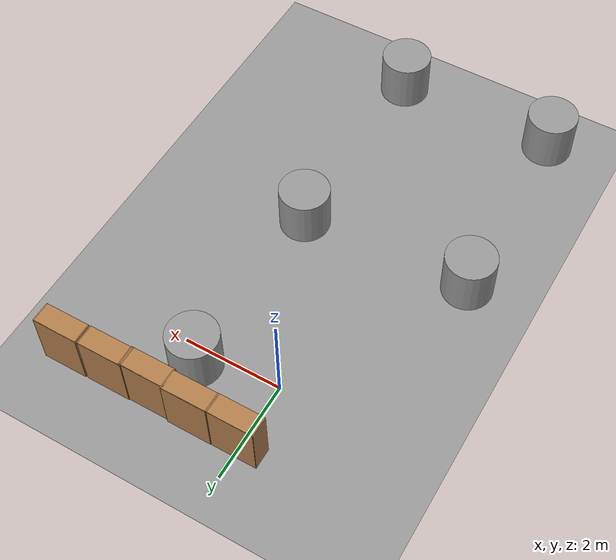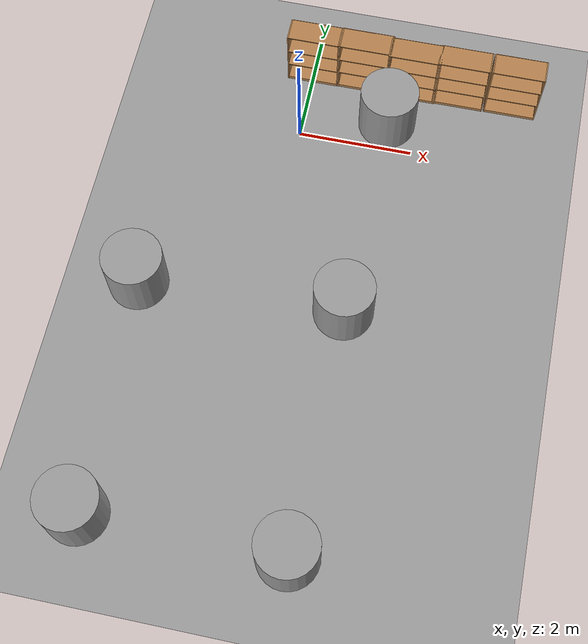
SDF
<sdf version="1.6">
 <world name="default">
  <light name="sun" type="directional">
   <pose>0 0 10 0 -0 0</pose>
   <diffuse>0.8 0.8 0.8 1</diffuse>
   <specular>0.2 0.2 0.2 1</specular>
   <attenuation>
    <range>1000</range>
    <constant>0.9</constant>
    <linear>0.01</linear>
    <quadratic>0.001</quadratic>
   </attenuation>
   <direction>0.5 0.1 -0.9</direction>
  </light>
  <scene><ambient>0.4 0.4 0.4 1</ambient><background>0.7 0.7 0.7 1</background><shadows>1</shadows></scene>
  <physics name="default_physics" default="0" type="ode">
   <max_step_size>0.01</max_step_size>
   <real_time_factor>1</real_time_factor>
   <real_time_update_rate>100</real_time_update_rate>
  </physics>
  <model name="bookshelf">
   <static>1</static>
   <link name="link">
    <inertial><mass>1</mass></inertial>
    <collision name="back">
     <pose>0 0.005 0.6 0 -0 0</pose>
     <geometry><box><size>0.9 0.01 1.2</size></box></geometry>
    </collision>
    <visual name="visual1">
     <pose>0 0.005 0.6 0 -0 0</pose>
     <geometry><box><size>0.9 0.01 1.2</size></box></geometry>
     <material>
      <script><uri>file://media/materials/scripts/gazebo.material</uri><name>Gazebo/Wood</name></script>
     </material>
    </visual>
    <collision name="left_side">
     <pose>0.45 -0.195 0.6 0 -0 0</pose>
     <geometry><box><size>0.02 0.4 1.2</size></box></geometry>
    </collision>
    <visual name="visual2">
     <pose>0.45 -0.195 0.6 0 -0 0</pose>
     <geometry><box><size>0.02 0.4 1.2</size></box></geometry>
     <material>
      <script><uri>file://media/materials/scripts/gazebo.material</uri><name>Gazebo/Wood</name></script>
     </material>
    </visual>
    <collision name="right_side">
     <pose>-0.45 -0.195 0.6 0 -0 0</pose>
     <geometry><box><size>0.02 0.4 1.2</size></box></geometry>
    </collision>
    <visual name="visual3">
     <pose>-0.45 -0.195 0.6 0 -0 0</pose>
     <geometry><box><size>0.02 0.4 1.2</size></box></geometry>
     <material>
      <script><uri>file://media/materials/scripts/gazebo.material</uri><name>Gazebo/Wood</name></script>
     </material>
    </visual>
    <collision name="bottom">
     <pose>0 -0.195 0.03 0 -0 0</pose>
     <geometry><box><size>0.88 0.4 0.06</size></box></geometry>
    </collision>
    <visual name="visual4">
     <pose>0 -0.195 0.03 0 -0 0</pose>
     <geometry><box><size>0.88 0.4 0.06</size></box></geometry>
     <material>
      <script><uri>file://media/materials/scripts/gazebo.material</uri><name>Gazebo/Wood</name></script>
     </material>
    </visual>
    <collision name="top">
     <pose>0 -0.195 1.19 0 -0 0</pose>
     <geometry><box><size>0.88 0.4 0.02</size></box></geometry>
    </collision>
    <visual name="visual5">
     <pose>0 -0.195 1.19 0 -0 0</pose>
     <geometry><box><size>0.88 0.4 0.02</size></box></geometry>
     <material>
      <script><uri>file://media/materials/scripts/gazebo.material</uri><name>Gazebo/Wood</name></script>
     </material>
    </visual>
    <collision name="low_shelf">
     <pose>0 -0.195 0.43 0 -0 0</pose>
     <geometry><box><size>0.88 0.4 0.02</size></box></geometry>
    </collision>
    <visual name="visual6">
     <pose>0 -0.195 0.43 0 -0 0</pose>
     <geometry><box><size>0.88 0.4 0.02</size></box></geometry>
     <material>
      <script><uri>file://media/materials/scripts/gazebo.material</uri><name>Gazebo/Wood</name></script>
     </material>
    </visual>
    <collision name="high_shelf">
     <pose>0 -0.195 0.8 0 -0 0</pose>
     <geometry><box><size>0.88 0.4 0.02</size></box></geometry>
    </collision>
    <visual name="visual7">
     <pose>0 -0.195 0.8 0 -0 0</pose>
     <geometry><box><size>0.88 0.4 0.02</size></box></geometry>
     <material>
      <script><uri>file://media/materials/scripts/gazebo.material</uri><name>Gazebo/Wood</name></script>
     </material>
    </visual>
    <velocity_decay><linear>0</linear><angular>0</angular></velocity_decay>
   </link>
   <pose>0 1.53026 0 0 -0 0</pose>
  </model>
  <model name="ground_plane_0">
   <static>1</static>
   <link name="link">
    <collision name="collision">
     <geometry><plane><normal>0 0 1</normal><size>100 100</size></plane></geometry>
     <surface><friction><ode><mu>100</mu><mu2>50</mu2></ode></friction></surface>
    </collision>
    <visual name="visual">
     <cast_shadows>0</cast_shadows>
     <geometry><plane><normal>0 0 1</normal><size>100 100</size></plane></geometry>
     <material>
      <script><uri>file://media/materials/scripts/gazebo.material</uri><name>Gazebo/Grey</name></script>
     </material>
    </visual>
    <velocity_decay><linear>0</linear><angular>0</angular></velocity_decay>
   </link>
   <pose>0.497681 0 0 0 -0 0</pose>
  </model>
  <model name="unit_cylinder_1">
   <pose>-2.00052 -3.48859 0.68966 -0.000266 9.7e-05 0.002817</pose>
   <link name="link">
    <inertial>
     <mass>1</mass>
     <inertia><ixx>1</ixx><ixy>0</ixy><ixz>0</ixz><iyy>1</iyy><iyz>0</iyz><izz>1</izz></inertia>
    </inertial>
    <collision name="collision">
     <geometry><cylinder><radius>0.5</radius><length>1</length></cylinder></geometry>
    </collision>
    <visual name="visual">
     <geometry><cylinder><radius>0.5</radius><length>1</length></cylinder></geometry>
     <material>
      <script><uri>file://media/materials/scripts/gazebo.material</uri><name>Gazebo/Grey</name></script>
     </material>
    </visual>
    <velocity_decay><linear>0</linear><angular>0</angular></velocity_decay>
   </link>
   <static>0</static>
  </model>
  <gravity>0 0 -9.8</gravity>
  <magnetic_field>6e-06 2.3e-05 -4.2e-05</magnetic_field>
  <atmosphere type="adiabatic"/>
  <spherical_coordinates>
   <surface_model>EARTH_WGS84</surface_model>
   <latitude_deg>0</latitude_deg>
   <longitude_deg>0</longitude_deg>
   <elevation>0</elevation>
   <heading_deg>0</heading_deg>
  </spherical_coordinates>
  <model name="unit_cylinder_1_clone">
   <pose>-1.89834 -7.42373 0.689661 -0.000265 9.6e-05 0.001543</pose>
   <link name="link">
    <inertial>
     <mass>1</mass>
     <inertia><ixx>1</ixx><ixy>0</ixy><ixz>0</ixz><iyy>1</iyy><iyz>0</iyz><izz>1</izz></inertia>
    </inertial>
    <collision name="collision">
     <geometry><cylinder><radius>0.5</radius><length>1</length></cylinder></geometry>
    </collision>
    <visual name="visual">
     <geometry><cylinder><radius>0.5</radius><length>1</length></cylinder></geometry>
     <material>
      <script><uri>file://media/materials/scripts/gazebo.material</uri><name>Gazebo/Grey</name></script>
     </material>
    </visual>
    <velocity_decay><linear>0</linear><angular>0</angular></velocity_decay>
   </link>
   <static>0</static>
  </model>
  <model name="unit_cylinder_1_clone_0">
   <pose>1.38186 -7.42878 0.689702 -7.3e-05 -0.000181 0.002235</pose>
   <link name="link">
    <inertial>
     <mass>1</mass>
     <inertia><ixx>1</ixx><ixy>0</ixy><ixz>0</ixz><iyy>1</iyy><iyz>0</iyz><izz>1</izz></inertia>
    </inertial>
    <collision name="collision">
     <geometry><cylinder><radius>0.5</radius><length>1</length></cylinder></geometry>
    </collision>
    <visual name="visual">
     <geometry><cylinder><radius>0.5</radius><length>1</length></cylinder></geometry>
     <material>
      <script><uri>file://media/materials/scripts/gazebo.material</uri><name>Gazebo/Grey</name></script>
     </material>
    </visual>
    <velocity_decay><linear>0</linear><angular>0</angular></velocity_decay>
   </link>
   <static>0</static>
  </model>
  <model name="unit_cylinder_1_clone_1">
   <pose>1.42988 -3.33333 0.689755 -3.9e-05 8.2e-05 0.00179</pose>
   <link name="link">
    <inertial>
     <mass>1</mass>
     <inertia><ixx>1</ixx><ixy>0</ixy><ixz>0</ixz><iyy>1</iyy><iyz>0</iyz><izz>1</izz></inertia>
    </inertial>
    <collision name="collision">
     <geometry><cylinder><radius>0.5</radius><length>1</length></cylinder></geometry>
    </collision>
    <visual name="visual">
     <geometry><cylinder><radius>0.5</radius><length>1</length></cylinder></geometry>
     <material>
      <script><uri>file://media/materials/scripts/gazebo.material</uri><name>Gazebo/Grey</name></script>
     </material>
    </visual>
    <velocity_decay><linear>0</linear><angular>0</angular></velocity_decay>
   </link>
   <static>0</static>
  </model>
  <model name="unit_cylinder_1_clone_2">
   <pose>1.49472 0.399077 0.689586 0.000506 -0.001233 -0.153799</pose>
   <link name="link">
    <inertial>
     <mass>1</mass>
     <inertia><ixx>1</ixx><ixy>0</ixy><ixz>0</ixz><iyy>1</iyy><iyz>0</iyz><izz>1</izz></inertia>
    </inertial>
    <collision name="collision">
     <geometry><cylinder><radius>0.5</radius><length>1</length></cylinder></geometry>
    </collision>
    <visual name="visual">
     <geometry><cylinder><radius>0.5</radius><length>1</length></cylinder></geometry>
     <material>
      <script><uri>file://media/materials/scripts/gazebo.material</uri><name>Gazebo/Grey</name></script>
     </material>
    </visual>
    <velocity_decay><linear>0</linear><angular>0</angular></velocity_decay>
   </link>
   <static>0</static>
  </model>
  <model name="bookshelf_clone">
   <static>1</static>
   <link name="link">
    <inertial><mass>1</mass></inertial>
    <collision name="back">
     <pose>0 0.005 0.6 0 -0 0</pose>
     <geometry><box><size>0.9 0.01 1.2</size></box></geometry>
    </collision>
    <visual name="visual1">
     <pose>0 0.005 0.6 0 -0 0</pose>
     <geometry><box><size>0.9 0.01 1.2</size></box></geometry>
     <material>
      <script><uri>file://media/materials/scripts/gazebo.material</uri><name>Gazebo/Wood</name></script>
     </material>
    </visual>
    <collision name="left_side">
     <pose>0.45 -0.195 0.6 0 -0 0</pose>
     <geometry><box><size>0.02 0.4 1.2</size></box></geometry>
    </collision>
    <visual name="visual2">
     <pose>0.45 -0.195 0.6 0 -0 0</pose>
     <geometry><box><size>0.02 0.4 1.2</size></box></geometry>
     <material>
      <script><uri>file://media/materials/scripts/gazebo.material</uri><name>Gazebo/Wood</name></script>
     </material>
    </visual>
    <collision name="right_side">
     <pose>-0.45 -0.195 0.6 0 -0 0</pose>
     <geometry><box><size>0.02 0.4 1.2</size></box></geometry>
    </collision>
    <visual name="visual3">
     <pose>-0.45 -0.195 0.6 0 -0 0</pose>
     <geometry><box><size>0.02 0.4 1.2</size></box></geometry>
     <material>
      <script><uri>file://media/materials/scripts/gazebo.material</uri><name>Gazebo/Wood</name></script>
     </material>
    </visual>
    <collision name="bottom">
     <pose>0 -0.195 0.03 0 -0 0</pose>
     <geometry><box><size>0.88 0.4 0.06</size></box></geometry>
    </collision>
    <visual name="visual4">
     <pose>0 -0.195 0.03 0 -0 0</pose>
     <geometry><box><size>0.88 0.4 0.06</size></box></geometry>
     <material>
      <script><uri>file://media/materials/scripts/gazebo.material</uri><name>Gazebo/Wood</name></script>
     </material>
    </visual>
    <collision name="top">
     <pose>0 -0.195 1.19 0 -0 0</pose>
     <geometry><box><size>0.88 0.4 0.02</size></box></geometry>
    </collision>
    <visual name="visual5">
     <pose>0 -0.195 1.19 0 -0 0</pose>
     <geometry><box><size>0.88 0.4 0.02</size></box></geometry>
     <material>
      <script><uri>file://media/materials/scripts/gazebo.material</uri><name>Gazebo/Wood</name></script>
     </material>
    </visual>
    <collision name="low_shelf">
     <pose>0 -0.195 0.43 0 -0 0</pose>
     <geometry><box><size>0.88 0.4 0.02</size></box></geometry>
    </collision>
    <visual name="visual6">
     <pose>0 -0.195 0.43 0 -0 0</pose>
     <geometry><box><size>0.88 0.4 0.02</size></box></geometry>
     <material>
      <script><uri>file://media/materials/scripts/gazebo.material</uri><name>Gazebo/Wood</name></script>
     </material>
    </visual>
    <collision name="high_shelf">
     <pose>0 -0.195 0.8 0 -0 0</pose>
     <geometry><box><size>0.88 0.4 0.02</size></box></geometry>
    </collision>
    <visual name="visual7">
     <pose>0 -0.195 0.8 0 -0 0</pose>
     <geometry><box><size>0.88 0.4 0.02</size></box></geometry>
     <material>
      <script><uri>file://media/materials/scripts/gazebo.material</uri><name>Gazebo/Wood</name></script>
     </material>
    </visual>
    <velocity_decay><linear>0</linear><angular>0</angular></velocity_decay>
   </link>
   <pose>0.920796 1.53662 0 0 -0 0</pose>
  </model>
  <model name="bookshelf_clone_0">
   <static>1</static>
   <link name="link">
    <inertial><mass>1</mass></inertial>
    <collision name="back">
     <pose>0 0.005 0.6 0 -0 0</pose>
     <geometry><box><size>0.9 0.01 1.2</size></box></geometry>
    </collision>
    <visual name="visual1">
     <pose>0 0.005 0.6 0 -0 0</pose>
     <geometry><box><size>0.9 0.01 1.2</size></box></geometry>
     <material>
      <script><uri>file://media/materials/scripts/gazebo.material</uri><name>Gazebo/Wood</name></script>
     </material>
    </visual>
    <collision name="left_side">
     <pose>0.45 -0.195 0.6 0 -0 0</pose>
     <geometry><box><size>0.02 0.4 1.2</size></box></geometry>
    </collision>
    <visual name="visual2">
     <pose>0.45 -0.195 0.6 0 -0 0</pose>
     <geometry><box><size>0.02 0.4 1.2</size></box></geometry>
     <material>
      <script><uri>file://media/materials/scripts/gazebo.material</uri><name>Gazebo/Wood</name></script>
     </material>
    </visual>
    <collision name="right_side">
     <pose>-0.45 -0.195 0.6 0 -0 0</pose>
     <geometry><box><size>0.02 0.4 1.2</size></box></geometry>
    </collision>
    <visual name="visual3">
     <pose>-0.45 -0.195 0.6 0 -0 0</pose>
     <geometry><box><size>0.02 0.4 1.2</size></box></geometry>
     <material>
      <script><uri>file://media/materials/scripts/gazebo.material</uri><name>Gazebo/Wood</name></script>
     </material>
    </visual>
    <collision name="bottom">
     <pose>0 -0.195 0.03 0 -0 0</pose>
     <geometry><box><size>0.88 0.4 0.06</size></box></geometry>
    </collision>
    <visual name="visual4">
     <pose>0 -0.195 0.03 0 -0 0</pose>
     <geometry><box><size>0.88 0.4 0.06</size></box></geometry>
     <material>
      <script><uri>file://media/materials/scripts/gazebo.material</uri><name>Gazebo/Wood</name></script>
     </material>
    </visual>
    <collision name="top">
     <pose>0 -0.195 1.19 0 -0 0</pose>
     <geometry><box><size>0.88 0.4 0.02</size></box></geometry>
    </collision>
    <visual name="visual5">
     <pose>0 -0.195 1.19 0 -0 0</pose>
     <geometry><box><size>0.88 0.4 0.02</size></box></geometry>
     <material>
      <script><uri>file://media/materials/scripts/gazebo.material</uri><name>Gazebo/Wood</name></script>
     </material>
    </visual>
    <collision name="low_shelf">
     <pose>0 -0.195 0.43 0 -0 0</pose>
     <geometry><box><size>0.88 0.4 0.02</size></box></geometry>
    </collision>
    <visual name="visual6">
     <pose>0 -0.195 0.43 0 -0 0</pose>
     <geometry><box><size>0.88 0.4 0.02</size></box></geometry>
     <material>
      <script><uri>file://media/materials/scripts/gazebo.material</uri><name>Gazebo/Wood</name></script>
     </material>
    </visual>
    <collision name="high_shelf">
     <pose>0 -0.195 0.8 0 -0 0</pose>
     <geometry><box><size>0.88 0.4 0.02</size></box></geometry>
    </collision>
    <visual name="visual7">
     <pose>0 -0.195 0.8 0 -0 0</pose>
     <geometry><box><size>0.88 0.4 0.02</size></box></geometry>
     <material>
      <script><uri>file://media/materials/scripts/gazebo.material</uri><name>Gazebo/Wood</name></script>
     </material>
    </visual>
    <velocity_decay><linear>0</linear><angular>0</angular></velocity_decay>
   </link>
   <pose>1.79955 1.50856 0 0 -0 0</pose>
  </model>
  <model name="bookshelf_clone_1">
   <static>1</static>
   <link name="link">
    <inertial><mass>1</mass></inertial>
    <collision name="back">
     <pose>0 0.005 0.6 0 -0 0</pose>
     <geometry><box><size>0.9 0.01 1.2</size></box></geometry>
    </collision>
    <visual name="visual1">
     <pose>0 0.005 0.6 0 -0 0</pose>
     <geometry><box><size>0.9 0.01 1.2</size></box></geometry>
     <material>
      <script><uri>file://media/materials/scripts/gazebo.material</uri><name>Gazebo/Wood</name></script>
     </material>
    </visual>
    <collision name="left_side">
     <pose>0.45 -0.195 0.6 0 -0 0</pose>
     <geometry><box><size>0.02 0.4 1.2</size></box></geometry>
    </collision>
    <visual name="visual2">
     <pose>0.45 -0.195 0.6 0 -0 0</pose>
     <geometry><box><size>0.02 0.4 1.2</size></box></geometry>
     <material>
      <script><uri>file://media/materials/scripts/gazebo.material</uri><name>Gazebo/Wood</name></script>
     </material>
    </visual>
    <collision name="right_side">
     <pose>-0.45 -0.195 0.6 0 -0 0</pose>
     <geometry><box><size>0.02 0.4 1.2</size></box></geometry>
    </collision>
    <visual name="visual3">
     <pose>-0.45 -0.195 0.6 0 -0 0</pose>
     <geometry><box><size>0.02 0.4 1.2</size></box></geometry>
     <material>
      <script><uri>file://media/materials/scripts/gazebo.material</uri><name>Gazebo/Wood</name></script>
     </material>
    </visual>
    <collision name="bottom">
     <pose>0 -0.195 0.03 0 -0 0</pose>
     <geometry><box><size>0.88 0.4 0.06</size></box></geometry>
    </collision>
    <visual name="visual4">
     <pose>0 -0.195 0.03 0 -0 0</pose>
     <geometry><box><size>0.88 0.4 0.06</size></box></geometry>
     <material>
      <script><uri>file://media/materials/scripts/gazebo.material</uri><name>Gazebo/Wood</name></script>
     </material>
    </visual>
    <collision name="top">
     <pose>0 -0.195 1.19 0 -0 0</pose>
     <geometry><box><size>0.88 0.4 0.02</size></box></geometry>
    </collision>
    <visual name="visual5">
     <pose>0 -0.195 1.19 0 -0 0</pose>
     <geometry><box><size>0.88 0.4 0.02</size></box></geometry>
     <material>
      <script><uri>file://media/materials/scripts/gazebo.material</uri><name>Gazebo/Wood</name></script>
     </material>
    </visual>
    <collision name="low_shelf">
     <pose>0 -0.195 0.43 0 -0 0</pose>
     <geometry><box><size>0.88 0.4 0.02</size></box></geometry>
    </collision>
    <visual name="visual6">
     <pose>0 -0.195 0.43 0 -0 0</pose>
     <geometry><box><size>0.88 0.4 0.02</size></box></geometry>
     <material>
      <script><uri>file://media/materials/scripts/gazebo.material</uri><name>Gazebo/Wood</name></script>
     </material>
    </visual>
    <collision name="high_shelf">
     <pose>0 -0.195 0.8 0 -0 0</pose>
     <geometry><box><size>0.88 0.4 0.02</size></box></geometry>
    </collision>
    <visual name="visual7">
     <pose>0 -0.195 0.8 0 -0 0</pose>
     <geometry><box><size>0.88 0.4 0.02</size></box></geometry>
     <material>
      <script><uri>file://media/materials/scripts/gazebo.material</uri><name>Gazebo/Wood</name></script>
     </material>
    </visual>
    <velocity_decay><linear>0</linear><angular>0</angular></velocity_decay>
   </link>
   <pose>2.66215 1.52326 0 0 -0 0</pose>
  </model>
  <model name="bookshelf_clone_2">
   <static>1</static>
   <link name="link">
    <inertial><mass>1</mass></inertial>
    <collision name="back">
     <pose>0 0.005 0.6 0 -0 0</pose>
     <geometry><box><size>0.9 0.01 1.2</size></box></geometry>
    </collision>
    <visual name="visual1">
     <pose>0 0.005 0.6 0 -0 0</pose>
     <geometry><box><size>0.9 0.01 1.2</size></box></geometry>
     <material>
      <script><uri>file://media/materials/scripts/gazebo.material</uri><name>Gazebo/Wood</name></script>
     </material>
    </visual>
    <collision name="left_side">
     <pose>0.45 -0.195 0.6 0 -0 0</pose>
     <geometry><box><size>0.02 0.4 1.2</size></box></geometry>
    </collision>
    <visual name="visual2">
     <pose>0.45 -0.195 0.6 0 -0 0</pose>
     <geometry><box><size>0.02 0.4 1.2</size></box></geometry>
     <material>
      <script><uri>file://media/materials/scripts/gazebo.material</uri><name>Gazebo/Wood</name></script>
     </material>
    </visual>
    <collision name="right_side">
     <pose>-0.45 -0.195 0.6 0 -0 0</pose>
     <geometry><box><size>0.02 0.4 1.2</size></box></geometry>
    </collision>
    <visual name="visual3">
     <pose>-0.45 -0.195 0.6 0 -0 0</pose>
     <geometry><box><size>0.02 0.4 1.2</size></box></geometry>
     <material>
      <script><uri>file://media/materials/scripts/gazebo.material</uri><name>Gazebo/Wood</name></script>
     </material>
    </visual>
    <collision name="bottom">
     <pose>0 -0.195 0.03 0 -0 0</pose>
     <geometry><box><size>0.88 0.4 0.06</size></box></geometry>
    </collision>
    <visual name="visual4">
     <pose>0 -0.195 0.03 0 -0 0</pose>
     <geometry><box><size>0.88 0.4 0.06</size></box></geometry>
     <material>
      <script><uri>file://media/materials/scripts/gazebo.material</uri><name>Gazebo/Wood</name></script>
     </material>
    </visual>
    <collision name="top">
     <pose>0 -0.195 1.19 0 -0 0</pose>
     <geometry><box><size>0.88 0.4 0.02</size></box></geometry>
    </collision>
    <visual name="visual5">
     <pose>0 -0.195 1.19 0 -0 0</pose>
     <geometry><box><size>0.88 0.4 0.02</size></box></geometry>
     <material>
      <script><uri>file://media/materials/scripts/gazebo.material</uri><name>Gazebo/Wood</name></script>
     </material>
    </visual>
    <collision name="low_shelf">
     <pose>0 -0.195 0.43 0 -0 0</pose>
     <geometry><box><size>0.88 0.4 0.02</size></box></geometry>
    </collision>
    <visual name="visual6">
     <pose>0 -0.195 0.43 0 -0 0</pose>
     <geometry><box><size>0.88 0.4 0.02</size></box></geometry>
     <material>
      <script><uri>file://media/materials/scripts/gazebo.material</uri><name>Gazebo/Wood</name></script>
     </material>
    </visual>
    <collision name="high_shelf">
     <pose>0 -0.195 0.8 0 -0 0</pose>
     <geometry><box><size>0.88 0.4 0.02</size></box></geometry>
    </collision>
    <visual name="visual7">
     <pose>0 -0.195 0.8 0 -0 0</pose>
     <geometry><box><size>0.88 0.4 0.02</size></box></geometry>
     <material>
      <script><uri>file://media/materials/scripts/gazebo.material</uri><name>Gazebo/Wood</name></script>
     </material>
    </visual>
    <velocity_decay><linear>0</linear><angular>0</angular></velocity_decay>
   </link>
   <pose>3.60579 1.5296 0 0 -0 0</pose>
  </model>
 </world>
</sdf>
